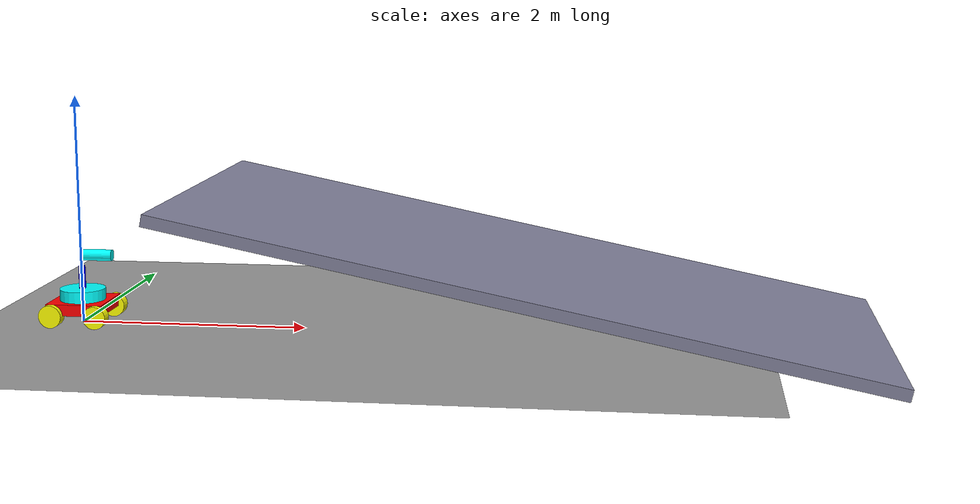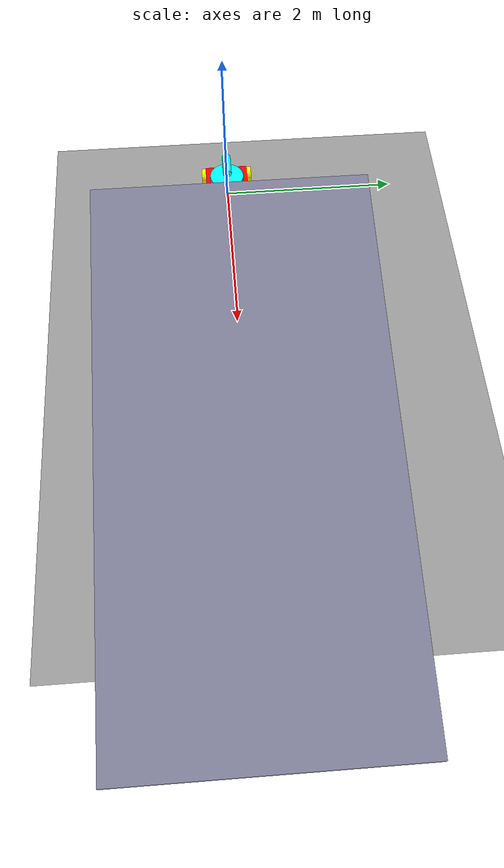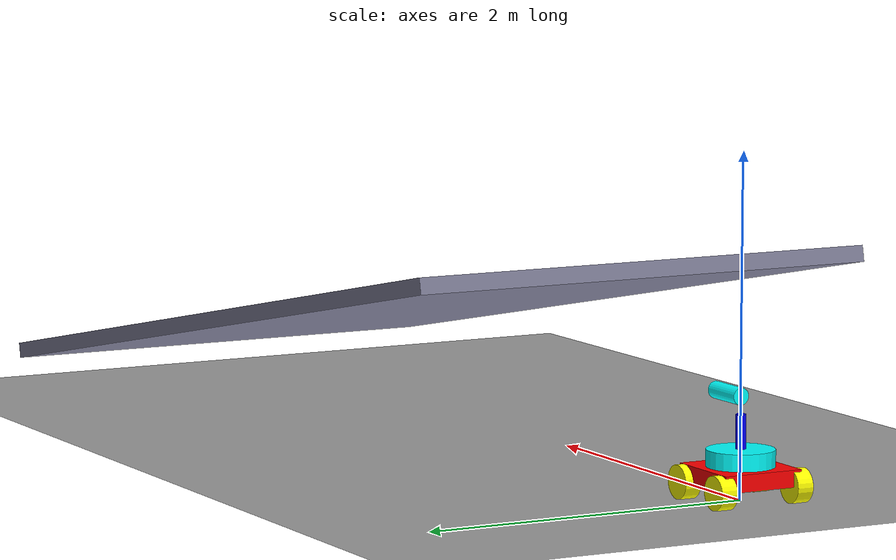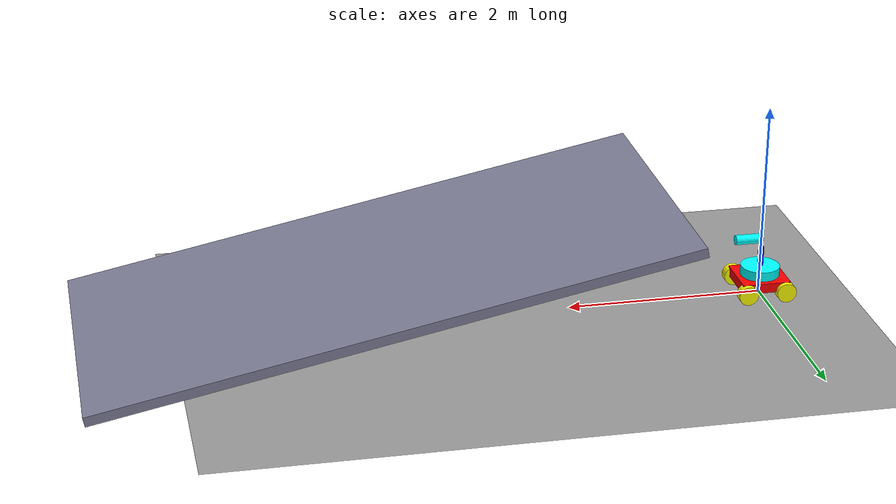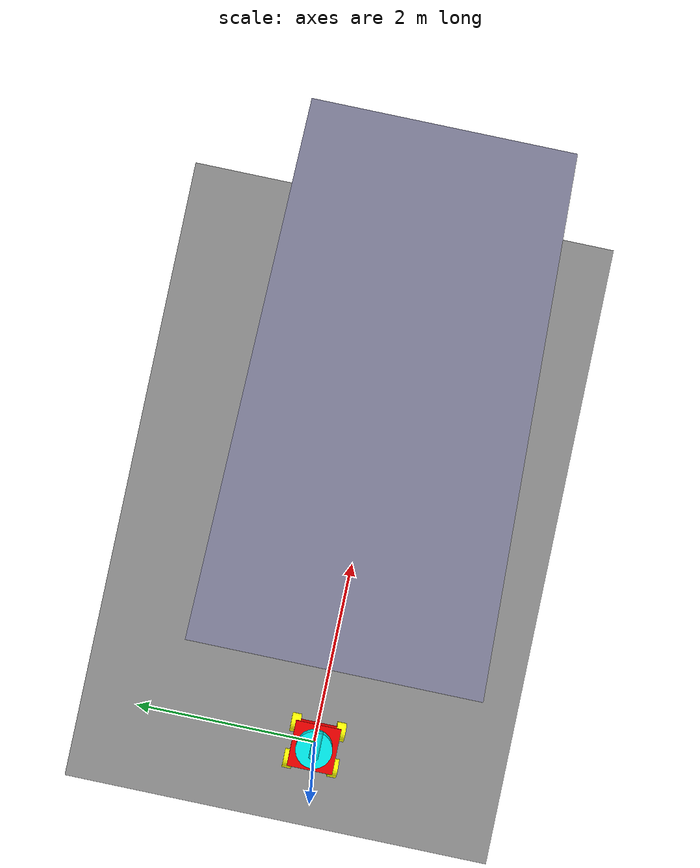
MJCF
<?xml version="1.0" encoding="utf-8"?>
<!--
  ramp.xml —— 坡道场景
  平地 + 一条 6m 长、约 11° 的坡道（低端贴近地面，方便开上去）。
  调 euler 的 0.2 可改变坡度。
-->
<mujoco model="sentry_scene_ramp">
  <include file="../sentry_robot.xml"/>

  <statistic center="0 0 0.2" extent="2"/>

  <visual>
    <headlight diffuse="0.6 0.6 0.6" ambient="0.1 0.1 0.1" specular="0 0 0"/>
    <rgba haze="0.15 0.25 0.35 1"/>
    <global azimuth="120" elevation="-20"/>
  </visual>

  <asset>
    <texture type="skybox" builtin="gradient" rgb1="0.3 0.5 0.7" rgb2="0 0 0" width="512" height="3072"/>
    <texture type="2d" name="groundplane" builtin="checker" mark="edge" rgb1="0.2 0.3 0.4" rgb2="0.1 0.2 0.3"
      markrgb="0.8 0.8 0.8" width="300" height="300"/>
    <material name="groundplane" texture="groundplane" texuniform="true" texrepeat="5 5"/>
  </asset>

  <worldbody>
    <light pos="0 0 3" dir="0 0 -1" directional="true"/>
    <geom name="floor" type="plane" size="6 6 0.1" material="groundplane" rgba="0.6 0.6 0.6 1"/>
    <!-- 坡道：6m 长、3m 宽、10cm 厚，绕 y 倾斜 0.2 rad(~11.5°)
         低端在 x≈1（贴近地面），高端在 x≈7 -->
    <geom name="ramp" type="box" size="3 1.5 0.05" pos="4 0 0.6" euler="0 0.2 0" rgba="0.5 0.5 0.6 1"/>
  </worldbody>
</mujoco>

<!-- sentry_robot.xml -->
<mujoco model="sentry_robot">
  <compiler angle="radian" coordinate="local"/>
  <option timestep="0.002"/>

  <worldbody>
    <!-- ============ 底盘（原 base_link，含 freejoint 使其可在地面移动） ============ -->
    <body name="base_link" pos="0 0 0.15">
      <freejoint/>
      <!-- 占位惯性：整体约 10kg 底盘（含电机电池），按需调整 -->
      <inertial pos="0 0 0" mass="10" diaginertia="0.217 0.217 0.417"/>
      <geom name="base" type="box" size="0.25 0.25 0.05" rgba="1 0 0 1"/>

      <!-- 云台：bigyaw（绕 z） -->
      <body name="bigyaw_link" pos="0 0 0.1">
        <joint name="bigyaw_joint" axis="0 0 1"/>
        <inertial pos="0 0 0" mass="1.0" diaginertia="0.011 0.011 0.02"/>
        <geom name="bigyaw" type="cylinder" size="0.2 0.05" rgba="0 1 1 1"/>

        <!-- 云台：small_yaw（绕 z） -->
        <body name="small_yaw_link" pos="0 0 0.1">
          <joint name="small_yaw_joint" axis="0 0 1"/>
          <inertial pos="0 0 0" mass="0.2" diaginertia="0.0015 0.0015 0.0001"/>
          <geom name="small_yaw" type="cylinder" size="0.03 0.15" rgba="0 0 1 1"/>

          <!-- 云台：pitch（绕 y） -->
          <body name="pitch_link" pos="0 0 0.25">
            <joint name="pitch_joint" axis="0 1 0"/>
            <inertial pos="0 0 0" mass="0.3" diaginertia="0.0021 0.0021 0.0004"/>
            <geom name="pitch" type="cylinder" size="0.05 0.14" pos="0.14 0 0"
                  quat="0.707105 0 0.707108 0" rgba="0 1 1 1"/>
          </body>
        </body>
      </body>

      <!-- 四个麦轮（绕 y 轴，半径 0.1） -->
      <body name="left_wheel_front_link" pos="-0.2 0.25 -0.05">
        <joint name="left_wheel_front_joint" axis="0 1 0"/>
        <inertial pos="0 0 0" mass="0.5" diaginertia="0.0017 0.0017 0.0025"/>
        <geom name="left_wheel_front" type="cylinder" size="0.1 0.05"
              quat="0.707105 0.707108 0 0" rgba="1 1 0 1"/>
      </body>
      <body name="right_wheel_front_link" pos="-0.2 -0.25 -0.05">
        <joint name="right_wheel_front_joint" axis="0 1 0"/>
        <inertial pos="0 0 0" mass="0.5" diaginertia="0.0017 0.0017 0.0025"/>
        <geom name="right_wheel_front" type="cylinder" size="0.1 0.05"
              quat="0.707105 0.707108 0 0" rgba="1 1 0 1"/>
      </body>
      <body name="left_wheel_back_link" pos="0.2 0.25 -0.05">
        <joint name="left_wheel_back_joint" axis="0 1 0"/>
        <inertial pos="0 0 0" mass="0.5" diaginertia="0.0017 0.0017 0.0025"/>
        <geom name="left_wheel_back" type="cylinder" size="0.1 0.05"
              quat="0.707105 0.707108 0 0" rgba="1 1 0 1"/>
      </body>
      <body name="right_wheel_back_link" pos="0.2 -0.25 -0.05">
        <joint name="right_wheel_back_joint" axis="0 1 0"/>
        <inertial pos="0 0 0" mass="0.5" diaginertia="0.0017 0.0017 0.0025"/>
        <geom name="right_wheel_back" type="cylinder" size="0.1 0.05"
              quat="0.707105 0.707108 0 0" rgba="1 1 0 1"/>
      </body>
    </body>
  </worldbody>

  <!-- ============ 执行器：全用 motor（力矩/effort 控制，对应你的 effort 指令链） ============
       数量 = 7，与 URDF ros2_control 的 7 个关节一一对应；
       ctrlrange 是力矩限幅（云台 ±10 N·m，轮子 ±30 N·m），按需调整。 -->
  <actuator>
    <motor name="bigyaw_motor"     joint="bigyaw_joint"          ctrlrange="-10 10"/>
    <motor name="small_yaw_motor"  joint="small_yaw_joint"       ctrlrange="-10 10"/>
    <motor name="pitch_motor"      joint="pitch_joint"           ctrlrange="-10 10"/>
    <motor name="left_wheel_front_motor"  joint="left_wheel_front_joint"  ctrlrange="-30 30"/>
    <motor name="right_wheel_front_motor" joint="right_wheel_front_joint" ctrlrange="-30 30"/>
    <motor name="left_wheel_back_motor"   joint="left_wheel_back_joint"   ctrlrange="-30 30"/>
    <motor name="right_wheel_back_motor"  joint="right_wheel_back_joint"  ctrlrange="-30 30"/>
  </actuator>
</mujoco>
